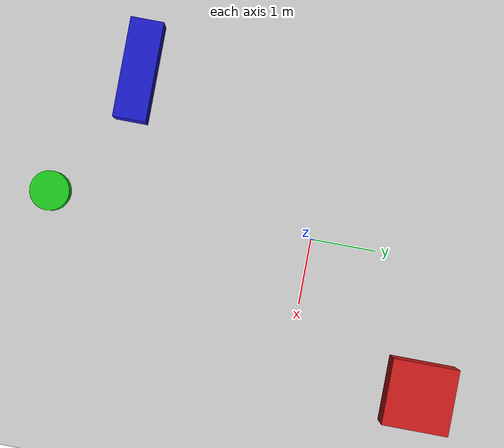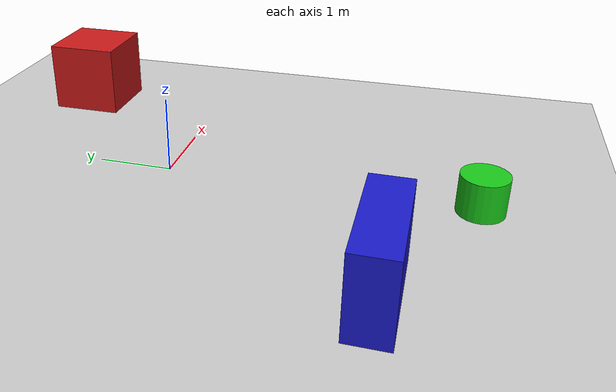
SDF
<?xml version="1.0" ?>
<sdf version="1.6">
  <world name="custom_world">

    <!-- Include the ground plane -->
    <include>
      <uri>model://ground_plane</uri>
    </include>

    <!-- Include a light source -->
    <include>
      <uri>model://sun</uri>
    </include>

    <!-- A few box-shaped obstacles -->
    <model name="obstacle1">
      <static>true</static>
      <link name="link">
        <pose>2 2 0.5 0 0 0</pose>
        <collision name="collision">
          <geometry>
            <box>
              <size>1 1 1</size>
            </box>
          </geometry>
        </collision>
        <visual name="visual">
          <geometry>
            <box>
              <size>1 1 1</size>
            </box>
          </geometry>
          <material>
            <ambient>0.8 0.1 0.1 1</ambient>
          </material>
        </visual>
      </link>
    </model>

    <model name="obstacle2">
      <static>true</static>
      <link name="link">
        <pose>-2 -3 0.5 0 0 0</pose>
        <collision name="collision">
          <geometry>
            <box>
              <size>1.5 0.5 1</size>
            </box>
          </geometry>
        </collision>
        <visual name="visual">
          <geometry>
            <box>
              <size>1.5 0.5 1</size>
            </box>
          </geometry>
          <material>
            <ambient>0.1 0.1 0.8 1</ambient>
          </material>
        </visual>
      </link>
    </model>

    <model name="obstacle3">
      <static>true</static>
      <link name="link">
        <pose>0 -4 0.25 0 0 0</pose>
        <collision name="collision">
          <geometry>
            <cylinder>
              <radius>0.3</radius>
              <length>0.5</length>
            </cylinder>
          </geometry>
        </collision>
        <visual name="visual">
          <geometry>
            <cylinder>
              <radius>0.3</radius>
              <length>0.5</length>
            </cylinder>
          </geometry>
          <material>
            <ambient>0.1 0.8 0.1 1</ambient>
          </material>
        </visual>
      </link>
    </model>
    <plugin filename="EntityContextMenuPlugin" name="Entity context menu">
    <gz-gui>
        <property key="state" type="string">floating</property>
        <property key="width" type="double">5</property>
        <property key="height" type="double">5</property>
        <property key="showTitleBar" type="bool">false</property>
    </gz-gui>
</plugin>

  </world>
</sdf>
